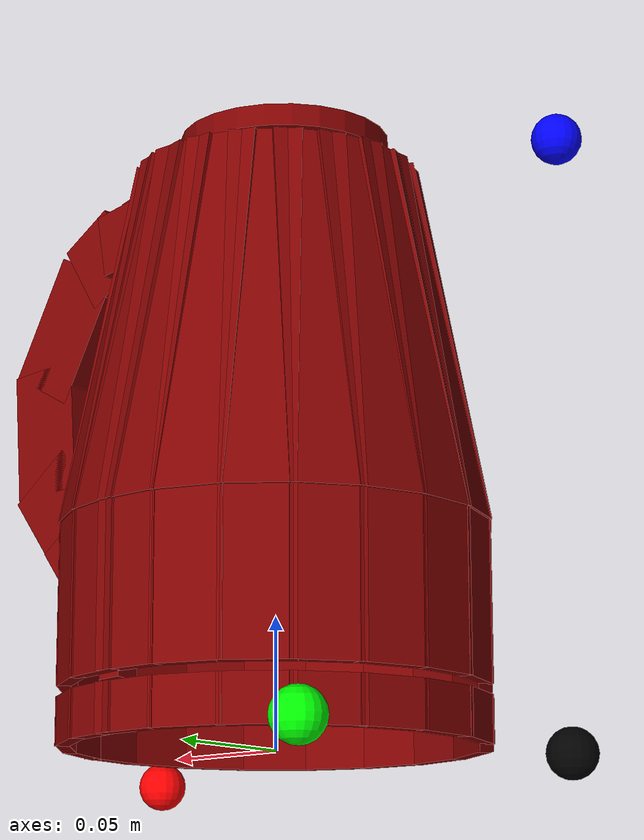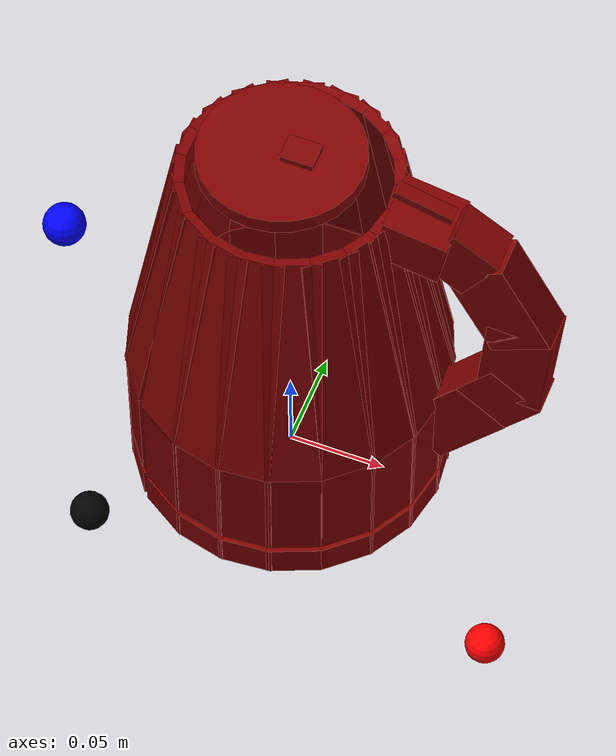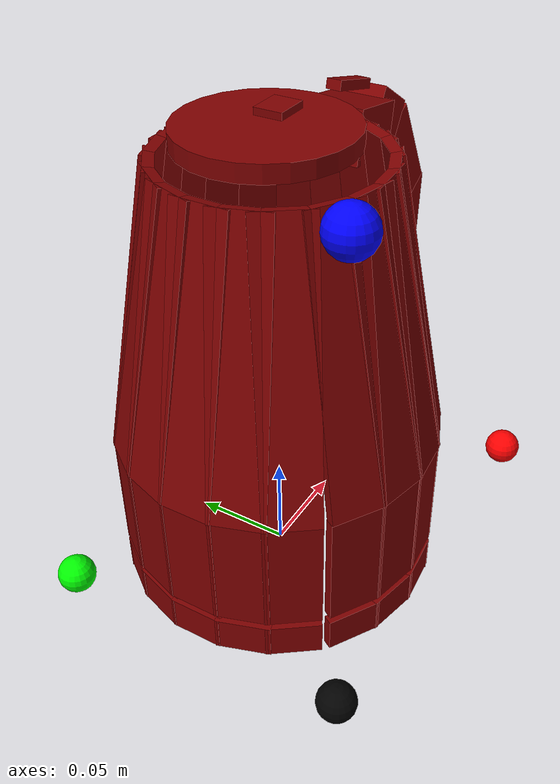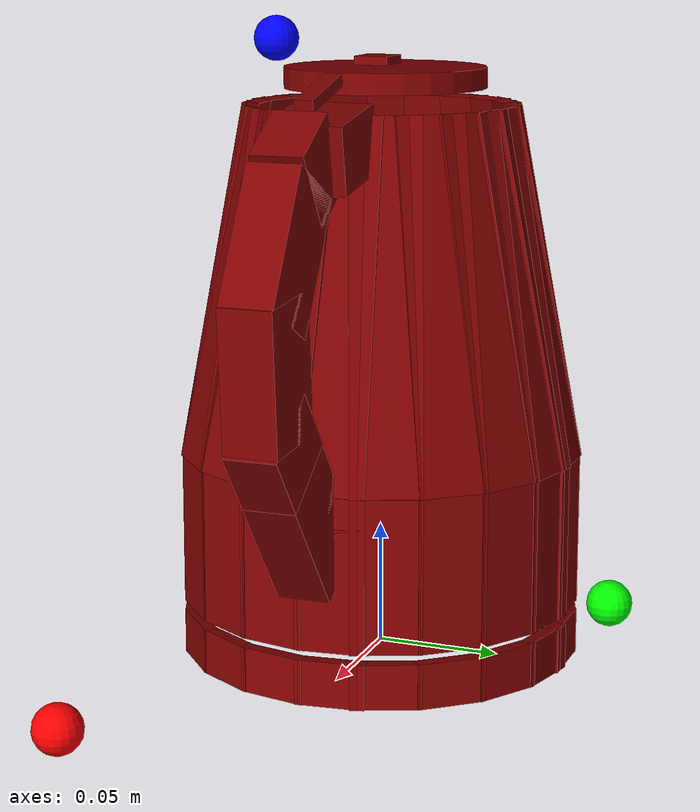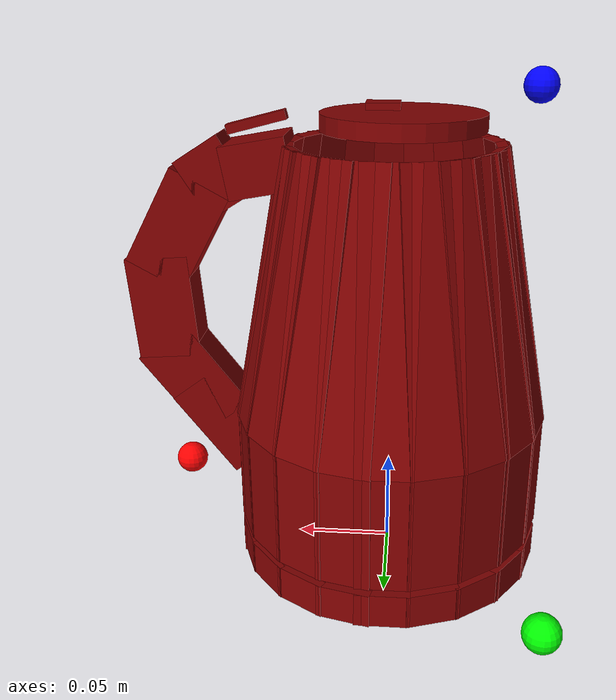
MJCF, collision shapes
<?xml version="1.0" ?>
<mujoco model="model">
    <compiler angle="radian"/>
    <asset>
        <mesh file="visuals/ElectricKettle001_Body001.obj" name="ElectricKettle001_Body001_vis"/>
        <mesh file="visuals/ElectricKettle001_Button002.obj" name="ElectricKettle001_Button002_vis"/>
        <mesh file="visuals/ElectricKettle001_Handle001.obj" name="ElectricKettle001_Handle001_vis"/>
        <mesh file="visuals/ElectricKettle001_Button001.obj" name="ElectricKettle001_Button001_vis"/>
        <mesh file="visuals/ElectricKettle001_Lid001.obj" name="ElectricKettle001_Lid001_vis"/>
        <mesh file="visuals/ElectricKettle001_Handle001_Clear.obj" name="ElectricKettle001_Handle001_Clear_vis"/>
        <texture file="visuals/T_ElectricKettle001_BC001.png" name="T_ElectricKettle001_BC001" type="2d"/>
        <material name="material" rgba="1 1 1 1" texture="T_ElectricKettle001_BC001"/>
        <material name="material_Clear" rgba="1 1 1 0.4" texture="T_ElectricKettle001_BC001"/>
    </asset>
    <default>
        <default class="visual">
            <geom conaffinity="0" contype="0" group="1" type="mesh"/>
        </default>
        <default class="collision">
            <geom group="0" rgba="0.5 0 0 0.5"/>
        </default>
    </default>
    <worldbody>
        <body>
            <site rgba="0 0 0 1" size="0.01" pos="-0.07801138237118721 -0.07804361544549465 0" name="ext_p0"/>
            <site rgba="1 0 0 1" size="0.01" pos="0.13312433287501335 -0.07804361544549465 0" name="ext_px"/>
            <site rgba="0 1 0 1" size="0.01" pos="-0.07801138237118721 0.07804333604872227 0" name="ext_py"/>
            <site rgba="0 0 1 1" size="0.01" pos="-0.07801138237118721 -0.07804361544549465 0.24174407124519348" name="ext_pz"/>
            <body name="object">
                <geom mesh="ElectricKettle001_Body001_vis" type="mesh" solimp="0.998 0.998 0.001" solref="0.001 1" density="100" friction="0.95 0.3 0.1" class="visual" material="material"/>
                <geom class="collision" type="box" pos="0.0 0.07726078480482101 0.009566003456711769" size="0.0025674684438854456 0.013775872066617012 0.008990506641566753" quat="0.7071067690849304 0.0 0.0 -0.7071067690849304"/>
                <geom class="collision" type="box" pos="-0.02437663823366165 0.07331445068120956 0.009566000662744045" size="0.002567468211054802 0.013775867410004139 0.008990505710244179" quat="0.8110213279724121 0.0 0.0 -0.5850166082382202"/>
                <geom class="collision" type="box" pos="-0.04602629691362381 0.062054891139268875 0.009566003456711769" size="0.002567468211054802 0.013775872066617012 0.008990506641566753" quat="0.8932319283485413 0.0 0.0 -0.449596107006073"/>
                <geom class="collision" type="box" pos="-0.06269532442092896 0.0451500341296196 0.009566003456711769" size="0.002567468211054802 0.013775872066617012 0.008990506641566753" quat="0.9517028331756592 0.0 0.0 -0.3070206344127655"/>
                <geom class="collision" type="box" pos="-0.0734357163310051 0.024008840322494507 0.009566003456711769" size="0.002567468211054802 0.013775870203971863 0.008990506641566753" quat="0.9875452518463135 0.0 0.0 -0.1573348045349121"/>
                <geom class="collision" type="box" pos="-0.07725980877876282 -0.00038727372884750366 0.009566000662744045" size="0.002567468211054802 0.013775870203971863 0.008990505710244179" quat="0.9999968409538269 0.0 0.0 0.0025063157081604004"/>
                <geom class="collision" type="box" pos="-0.07328534126281738 -0.02446400746703148 0.009566000662744045" size="0.002567468211054802 0.013775867410004139 0.008990505710244179" quat="0.9870524406433105 0.0 0.0 0.16039776802062988"/>
                <geom class="collision" type="box" pos="-0.06239733099937439 -0.045560967177152634 0.009566000662744045" size="0.002567468211054802 0.013775869272649288 0.008990505710244179" quat="0.9506890773773193 0.0 0.0 0.3101453483104706"/>
                <geom class="collision" type="box" pos="-0.04058349132537842 -0.06574350595474243 0.009566000662744045" size="0.002567468211054802 0.013775873929262161 0.008990505710244179" quat="0.8732923269271851 0.0 0.0 0.48719653487205505"/>
                <geom class="collision" type="box" pos="-0.01776774227619171 -0.0751899853348732 0.009566003456711769" size="0.0025674679782241583 0.013775872066617012 0.008990506641566753" quat="0.7842100858688354 0.0 0.0 0.6204953193664551"/>
                <geom class="collision" type="box" pos="0.006569035351276398 -0.07698100805282593 0.009566000662744045" size="0.0025674679782241583 0.013775871135294437 0.008990505710244179" quat="-0.6763784885406494 0.0 0.0 -0.7365542650222778"/>
                <geom class="collision" type="box" pos="0.029632963240146637 -0.07135205715894699 0.009566003456711769" size="0.002567468211054802 0.013775870203971863 0.008990506641566753" quat="-0.5551824569702148 0.0 0.0 -0.8317285776138306"/>
                <geom class="collision" type="box" pos="0.051555026322603226 -0.05754397064447403 0.009566003456711769" size="0.002567468909546733 0.013775873929262161 0.008990506641566753" quat="-0.40786898136138916 0.0 0.0 -0.9130403995513916"/>
                <geom class="collision" type="box" pos="0.06707746535539627 -0.03833853453397751 0.009566000662744045" size="0.0025674679782241583 0.013775869272649288 0.008990505710244179" quat="-0.2567143738269806 0.0 0.0 -0.9664872884750366"/>
                <geom class="collision" type="box" pos="0.07568882405757904 -0.015505857765674591 0.009566003456711769" size="0.002567468909546733 0.013775873929262161 0.008990506641566753" quat="-0.10086193680763245 0.0 0.0 -0.9949004650115967"/>
                <geom class="collision" type="box" pos="0.07682354748249054 0.008207902312278748 0.009566003456711769" size="0.0025674677453935146 0.013775868341326714 0.008990506641566753" quat="0.053193509578704834 0.0 0.0 -0.9985842108726501"/>
                <geom class="collision" type="box" pos="0.07181009650230408 0.02850506082177162 0.009566003456711769" size="0.002567468909546733 0.013775872997939587 0.008990506641566753" quat="0.18781530857086182 0.0 0.0 -0.9822043180465698"/>
                <geom class="collision" type="box" pos="0.05914850905537605 0.04970595985651016 0.009566003456711769" size="0.002567468909546733 0.013775874860584736 0.008990506641566753" quat="0.3423670530319214 0.0 0.0 -0.9395662546157837"/>
                <geom class="collision" type="box" pos="0.04069571942090988 0.06567410379648209 0.009566003456711769" size="0.0025674679782241583 0.013775869272649288 0.008990506641566753" quat="0.4864504635334015 0.0 0.0 -0.8737081289291382"/>
                <geom class="collision" type="box" pos="0.018833518028259277 0.07493015378713608 0.009566000662744045" size="0.002567468211054802 0.013775870203971863 0.008990505710244179" quat="0.6149123907089233 0.0 0.0 -0.78859543800354"/>
                <body name="ElectricKettle001_Handle001">
                    <joint axis="0 0 1" pos="0.0 0.0 0.019041121006011963" limited="true" name="ElectricKettle001_Handle001_joint" range="0.0 0.02" type="slide" damping="2" frictionloss="2" armature=".01"/>
                    <geom mesh="ElectricKettle001_Handle001_vis" type="mesh" solimp="0.998 0.998 0.001" solref="0.001 1" density="100" friction="0.95 0.3 0.1" class="visual" material="material"/>
                    <geom class="collision" type="box" pos="0.07114657759666443 0.014071319252252579 0.051101066172122955" size="0.0059483167715370655 0.020590348169207573 0.005948314908891916" quat="0.5410292744636536 0.5156148076057434 -0.43833237886428833 -0.49929279088974"/>
                    <geom class="collision" type="box" pos="0.08698375523090363 -7.450580596923828e-09 0.2055806666612625" size="0.010406920686364174 0.016176754608750343 0.012970302253961563" quat="0.6185635924339294 0.34260621666908264 -0.34260621666908264 -0.6185635924339294"/>
                    <geom class="collision" type="box" pos="0.10708519071340561 -7.450580596923828e-09 0.1791350394487381" size="0.010406920686364174 0.016176756471395493 0.02673378959298134" quat="0.6847237944602966 0.17650292813777924 -0.17650292813777924 -0.6847237944602966"/>
                    <geom class="collision" type="box" pos="0.11707442998886108 -7.450580596923828e-09 0.13792939484119415" size="0.010406920686364174 0.016176756471395493 0.02673378959298134" quat="0.7066470980644226 -0.025491775944828987 0.025491775944828987 -0.7066470980644226"/>
                    <geom class="collision" type="box" pos="0.10333921760320663 -7.450580596923828e-09 0.09774540364742279" size="0.010406920686364174 0.016176752746105194 0.02673378959298134" quat="0.6706768274307251 -0.22403696179389954 0.22403696179389954 -0.6706768274307251"/>
                    <geom class="collision" type="box" pos="0.0865391343832016 -7.450580596923828e-09 0.07492906600236893" size="0.010406920686364174 0.016176752746105194 0.02673378959298134" quat="0.6706768274307251 -0.22403696179389954 0.22403696179389954 -0.6706768274307251"/>
                    <geom class="collision" type="box" pos="0.0 0.07726078480482101 0.052683018147945404" size="0.0025674684438854456 0.013775872066617012 0.030322927981615067" quat="0.7071067690849304 0.0 0.0 -0.7071067690849304"/>
                    <geom class="collision" type="box" pos="0.0 0.06438226997852325 0.15227310359477997" size="0.002567468211054802 0.013775872066617012 0.07080358266830444" quat="0.7038407325744629 0.06788363307714462 0.06788363307714462 -0.7038407325744629"/>
                    <geom class="collision" type="box" pos="-0.02437663823366165 0.07331445068120956 0.052683018147945404" size="0.002567468211054802 0.013775870203971863 0.030322927981615067" quat="0.8110213279724121 0.0 0.0 -0.5850166082382202"/>
                    <geom class="collision" type="box" pos="-0.0203133225440979 0.06109374389052391 0.15227310359477997" size="0.0025674684438854456 0.013775872066617012 0.07080358266830444" quat="0.8072752952575684 0.05616272613406181 0.07785961776971817 -0.5823144912719727"/>
                    <geom class="collision" type="box" pos="-0.04602629318833351 0.06205488741397858 0.052683018147945404" size="0.0025674679782241583 0.013775869272649288 0.030322927981615067" quat="0.8932319283485413 0.0 0.0 -0.449596107006073"/>
                    <geom class="collision" type="box" pos="-0.03835422545671463 0.05171102657914162 0.15227310359477997" size="0.0025674679782241583 0.013775870203971863 0.07080358266830444" quat="0.8891061544418335 0.04316210374236107 0.08575201034545898 -0.4475195109844208"/>
                    <geom class="collision" type="box" pos="-0.06269532442092896 0.0451500341296196 0.052683018147945404" size="0.002567468211054802 0.013775870203971863 0.030322927981615067" quat="0.9517028331756592 0.0 0.0 -0.3070206344127655"/>
                    <geom class="collision" type="box" pos="-0.05224471539258957 0.037624016404151917 0.15227310359477997" size="0.0025674679782241583 0.013775869272649288 0.07080358266830444" quat="0.9473071098327637 0.029474565759301186 0.09136534482240677 -0.30560243129730225"/>
                    <geom class="collision" type="box" pos="-0.0734357163310051 0.024008840322494507 0.052683018147945404" size="0.002567468211054802 0.013775870203971863 0.030322927981615067" quat="0.9875452518463135 0.0 0.0 -0.1573348045349121"/>
                    <geom class="collision" type="box" pos="-0.06119479984045029 0.020006828010082245 0.15227310359477997" size="0.0025674679782241583 0.013775870203971863 0.07080358266830444" quat="0.9829839468002319 0.015104446560144424 0.09480626881122589 -0.15660810470581055"/>
                    <geom class="collision" type="box" pos="-0.07725980877876282 -0.00038727372884750366 0.052683018147945404" size="0.002567468211054802 0.013775870203971863 0.030322927981615067" quat="0.9999968409538269 0.0 0.0 0.0025063157081604004"/>
                    <geom class="collision" type="box" pos="-0.06438146531581879 -0.0003227218985557556 0.15227310359477997" size="0.002567468211054802 0.013775870203971863 0.07080358266830444" quat="0.9953780174255371 -0.0002406090497970581 0.09600163251161575 0.0024946928024291992"/>
                    <geom class="collision" type="box" pos="-0.07328534126281738 -0.02446400746703148 0.052683018147945404" size="0.002567468211054802 0.013775870203971863 0.030322927981615067" quat="0.9870524406433105 0.0 0.0 0.16039776802062988"/>
                    <geom class="collision" type="box" pos="-0.06106949970126152 -0.02038612961769104 0.15227310359477997" size="0.002567468211054802 0.013775870203971863 0.07080358266830444" quat="0.9824934005737305 -0.015398498624563217 0.09475894272327423 0.15965688228607178"/>
                    <geom class="collision" type="box" pos="-0.06239732727408409 -0.04556097090244293 0.052683018147945404" size="0.002567468211054802 0.013775870203971863 0.030322927981615067" quat="0.9506890773773193 0.0 0.0 0.3101453483104706"/>
                    <geom class="collision" type="box" pos="-0.0519963875412941 -0.03796646371483803 0.15227310359477997" size="0.0025674679782241583 0.013775870203971863 0.07080358266830444" quat="0.9462980031967163 -0.029774559661746025 0.09126799553632736 0.30871284008026123"/>
                    <geom class="collision" type="box" pos="-0.040583498775959015 -0.06574351340532303 0.052683018147945404" size="0.0025674686767160892 0.013775872066617012 0.030322927981615067" quat="0.8732923269271851 0.0 0.0 0.48719653487205505"/>
                    <geom class="collision" type="box" pos="-0.03381865471601486 -0.05478479713201523 0.15227310359477997" size="0.002567468211054802 0.013775871135294437 0.07080358266830444" quat="0.8692587018013 -0.0467718169093132 0.08383776992559433 0.48494619131088257"/>
                    <geom class="collision" type="box" pos="-0.01776774972677231 -0.0751900002360344 0.052683018147945404" size="0.0025674684438854456 0.013775872066617012 0.030322927981615067" quat="0.7842100858688354 0.0 0.0 0.6204953193664551"/>
                    <geom class="collision" type="box" pos="-0.014806054532527924 -0.06265666335821152 0.15227310359477997" size="0.0025674677453935146 0.013775870203971863 0.07080358266830444" quat="0.7805879712104797 -0.05956875905394554 0.07528569549322128 0.61762934923172"/>
                    <geom class="collision" type="box" pos="0.006569035351276398 -0.07698101550340652 0.052683018147945404" size="0.002567468211054802 0.013775871135294437 0.030322927981615067" quat="-0.6763784885406494 0.0 0.0 -0.7365542650222778"/>
                    <geom class="collision" type="box" pos="0.00547405332326889 -0.06414914131164551 0.15227310359477997" size="0.002567468211054802 0.013775872066617012 0.07080358266830444" quat="-0.6732544302940369 0.07071062922477722 -0.064933642745018 -0.7331522107124329"/>
                    <geom class="collision" type="box" pos="0.029632963240146637 -0.07135205715894699 0.052683018147945404" size="0.002567468211054802 0.013775870203971863 0.030322927981615067" quat="-0.5551824569702148 0.0 0.0 -0.8317285776138306"/>
                    <geom class="collision" type="box" pos="0.024693485349416733 -0.05945846810936928 0.15227310359477997" size="0.0025674677453935146 0.013775870203971863 0.07080358266830444" quat="-0.552618145942688 0.07984756678342819 -0.053298600018024445 -0.8278869390487671"/>
                    <geom class="collision" type="box" pos="0.051555026322603226 -0.05754397064447403 0.052683018147945404" size="0.002567468909546733 0.013775873929262161 0.030322927981615067" quat="-0.40786898136138916 0.0 0.0 -0.9130403995513916"/>
                    <geom class="collision" type="box" pos="0.04296139255166054 -0.04795200377702713 0.15227310359477997" size="0.002567468211054802 0.013775871135294437 0.07080358266830444" quat="-0.40598490834236145 0.08765365928411484 -0.03915619105100632 -0.9088233709335327"/>
                    <geom class="collision" type="box" pos="0.06707746535539627 -0.03833853453397751 0.052683018147945404" size="0.0025674679782241583 0.013775869272649288 0.030322927981615067" quat="-0.2567143738269806 0.0 0.0 -0.9664872884750366"/>
                    <geom class="collision" type="box" pos="0.05589638650417328 -0.03194792568683624 0.15227310359477997" size="0.0025674686767160892 0.013775873929262161 0.07080358266830444" quat="-0.25552862882614136 0.09278465807437897 -0.02464507520198822 -0.9620231986045837"/>
                    <geom class="collision" type="box" pos="0.07568881660699844 -0.015505857765674591 0.052683018147945404" size="0.0025674686767160892 0.013775872066617012 0.030322927981615067" quat="-0.10086193680763245 0.0 0.0 -0.9949004650115967"/>
                    <geom class="collision" type="box" pos="0.0630723387002945 -0.012921199202537537 0.15227310359477997" size="0.0025674686767160892 0.013775872997939587 0.07080358266830444" quat="-0.10039600729942322 0.09551237523555756 -0.009682934731245041 -0.9903050661087036"/>
                    <geom class="collision" type="box" pos="0.07682356238365173 0.008207902312278748 0.052683018147945404" size="0.0025674679782241583 0.013775869272649288 0.030322927981615067" quat="0.053193509578704834 0.0 0.0 -0.9985842108726501"/>
                    <geom class="collision" type="box" pos="0.06401792913675308 0.00683974102139473 0.15227310359477997" size="0.002567468211054802 0.013775872066617012 0.07080358266830444" quat="0.052947789430618286 0.09586603194475174 0.00510668009519577 -0.9939719438552856"/>
                    <geom class="collision" type="box" pos="0.07181010395288467 0.02850506454706192 0.052683018147945404" size="0.002567468909546733 0.013775873929262161 0.030322927981615067" quat="0.18781530857086182 0.0 0.0 -0.9822043180465698"/>
                    <geom class="collision" type="box" pos="0.05984015017747879 0.023753587156534195 0.15227310359477997" size="0.002567468909546733 0.013775874860584736 0.07080358266830444" quat="0.18694770336151123 0.09429353475570679 0.018030624836683273 -0.9776676893234253"/>
                    <geom class="collision" type="box" pos="0.05914851650595665 0.04970596730709076 0.052683018147945404" size="0.0025674691423773766 0.013775874860584736 0.030322927981615067" quat="0.3423670530319214 0.0 0.0 -0.9395662546157837"/>
                    <geom class="collision" type="box" pos="0.04928910732269287 0.04142053797841072 0.15227310359477997" size="0.002567468211054802 0.013775872066617012 0.07080358266830444" quat="0.3407856822013855 0.09020020067691803 0.032867904752492905 -0.9352266192436218"/>
                    <geom class="collision" type="box" pos="0.04069571942090988 0.06567410379648209 0.052683018147945404" size="0.0025674679782241583 0.013775869272649288 0.030322927981615067" quat="0.4864504635334015 0.0 0.0 -0.8737081289291382"/>
                    <geom class="collision" type="box" pos="0.03391219675540924 0.05472695827484131 0.15227310359477997" size="0.0025674679782241583 0.013775870203971863 0.07080358266830444" quat="0.484203577041626 0.08387769758701324 0.04670019447803497 -0.8696726560592651"/>
                    <geom class="collision" type="box" pos="0.018833518028259277 0.07493015378713608 0.052683018147945404" size="0.002567468211054802 0.013775870203971863 0.030322927981615067" quat="0.6149123907089233 0.0 0.0 -0.78859543800354"/>
                    <geom class="collision" type="box" pos="0.015694178640842438 0.06244012713432312 0.15227310359477997" size="0.0025674679782241583 0.013775871135294437 0.07080358266830444" quat="0.6120721697807312 0.07570669054985046 0.059032782912254333 -0.7849530577659607"/>
                    <geom class="collision" type="box" pos="0.06511648744344711 0.0 0.21094107627868652" size="0.015497389249503613 0.016176752746105194 0.012970301322638988" quat="0.7044461369514465 -0.06128261610865593 0.06128261610865593 -0.7044461369514465"/>
                    <body name="ElectricKettle001_Button002">
                        <joint axis="0 1 0" pos="0.06595715880393982 -0.00025021814508363605 0.23366549611091614" limited="true" name="ElectricKettle001_Button002_joint" range="0.0 0.2617993877991494" type="hinge" damping="2" frictionloss="2" armature=".01"/>
                        <geom mesh="ElectricKettle001_Button002_vis" type="mesh" solimp="0.998 0.998 0.001" solref="0.001 1" density="100" friction="0.95 0.3 0.1" class="visual" material="material"/>
                        <geom class="collision" type="box" pos="0.06635893136262894 0.0 0.2311476618051529" size="0.0036123027093708515 0.014906937256455421 0.0023257581051439047" quat="0.08908417075872421 0.7014727592468262 -0.7014727592468262 -0.08908417075872421"/>
                    </body>
                    <body name="ElectricKettle001_Handle001_Clear">
                        <geom mesh="ElectricKettle001_Handle001_Clear_vis" type="mesh" solimp="0.998 0.998 0.001" solref="0.001 1" density="100" friction="0.95 0.3 0.1" class="visual" material="material_Clear"/>
                        <geom class="collision" type="box" pos="0.07114657759666443 0.014071319252252579 0.051101066172122955" size="0.0059483167715370655 0.020590348169207573 0.005948314908891916" quat="0.5410292744636536 0.5156148076057434 -0.43833237886428833 -0.49929279088974"/>
                        <geom class="collision" type="box" pos="0.08698375523090363 -7.450580596923828e-09 0.2055806666612625" size="0.010406920686364174 0.016176754608750343 0.012970302253961563" quat="0.6185635924339294 0.34260621666908264 -0.34260621666908264 -0.6185635924339294"/>
                        <geom class="collision" type="box" pos="0.10708519071340561 -7.450580596923828e-09 0.1791350394487381" size="0.010406920686364174 0.016176756471395493 0.02673378959298134" quat="0.6847237944602966 0.17650292813777924 -0.17650292813777924 -0.6847237944602966"/>
                        <geom class="collision" type="box" pos="0.11707442998886108 -7.450580596923828e-09 0.13792939484119415" size="0.010406920686364174 0.016176756471395493 0.02673378959298134" quat="0.7066470980644226 -0.025491775944828987 0.025491775944828987 -0.7066470980644226"/>
                        <geom class="collision" type="box" pos="0.10333921760320663 -7.450580596923828e-09 0.09774540364742279" size="0.010406920686364174 0.016176752746105194 0.02673378959298134" quat="0.6706768274307251 -0.22403696179389954 0.22403696179389954 -0.6706768274307251"/>
                        <geom class="collision" type="box" pos="0.0865391343832016 -7.450580596923828e-09 0.07492906600236893" size="0.010406920686364174 0.016176752746105194 0.02673378959298134" quat="0.6706768274307251 -0.22403696179389954 0.22403696179389954 -0.6706768274307251"/>
                        <geom class="collision" type="box" pos="0.0 0.07726078480482101 0.052683018147945404" size="0.0025674684438854456 0.013775872066617012 0.030322927981615067" quat="0.7071067690849304 0.0 0.0 -0.7071067690849304"/>
                        <geom class="collision" type="box" pos="0.0 0.06438226997852325 0.15227310359477997" size="0.002567468211054802 0.013775872066617012 0.07080358266830444" quat="0.7038407325744629 0.06788363307714462 0.06788363307714462 -0.7038407325744629"/>
                        <geom class="collision" type="box" pos="-0.02437663823366165 0.07331445068120956 0.052683018147945404" size="0.002567468211054802 0.013775870203971863 0.030322927981615067" quat="0.8110213279724121 0.0 0.0 -0.5850166082382202"/>
                        <geom class="collision" type="box" pos="-0.0203133225440979 0.06109374389052391 0.15227310359477997" size="0.0025674684438854456 0.013775872066617012 0.07080358266830444" quat="0.8072752952575684 0.05616272613406181 0.07785961776971817 -0.5823144912719727"/>
                        <geom class="collision" type="box" pos="-0.04602629318833351 0.06205488741397858 0.052683018147945404" size="0.0025674679782241583 0.013775869272649288 0.030322927981615067" quat="0.8932319283485413 0.0 0.0 -0.449596107006073"/>
                        <geom class="collision" type="box" pos="-0.03835422545671463 0.05171102657914162 0.15227310359477997" size="0.0025674679782241583 0.013775870203971863 0.07080358266830444" quat="0.8891061544418335 0.04316210374236107 0.08575201034545898 -0.4475195109844208"/>
                        <geom class="collision" type="box" pos="-0.06269532442092896 0.0451500341296196 0.052683018147945404" size="0.002567468211054802 0.013775870203971863 0.030322927981615067" quat="0.9517028331756592 0.0 0.0 -0.3070206344127655"/>
                        <geom class="collision" type="box" pos="-0.05224471539258957 0.037624016404151917 0.15227310359477997" size="0.0025674679782241583 0.013775869272649288 0.07080358266830444" quat="0.9473071098327637 0.029474565759301186 0.09136534482240677 -0.30560243129730225"/>
                        <geom class="collision" type="box" pos="-0.0734357163310051 0.024008840322494507 0.052683018147945404" size="0.002567468211054802 0.013775870203971863 0.030322927981615067" quat="0.9875452518463135 0.0 0.0 -0.1573348045349121"/>
                        <geom class="collision" type="box" pos="-0.06119479984045029 0.020006828010082245 0.15227310359477997" size="0.0025674679782241583 0.013775870203971863 0.07080358266830444" quat="0.9829839468002319 0.015104446560144424 0.09480626881122589 -0.15660810470581055"/>
                        <geom class="collision" type="box" pos="-0.07725980877876282 -0.00038727372884750366 0.052683018147945404" size="0.002567468211054802 0.013775870203971863 0.030322927981615067" quat="0.9999968409538269 0.0 0.0 0.0025063157081604004"/>
                        <geom class="collision" type="box" pos="-0.06438146531581879 -0.0003227218985557556 0.15227310359477997" size="0.002567468211054802 0.013775870203971863 0.07080358266830444" quat="0.9953780174255371 -0.0002406090497970581 0.09600163251161575 0.0024946928024291992"/>
                        <geom class="collision" type="box" pos="-0.07328534126281738 -0.02446400746703148 0.052683018147945404" size="0.002567468211054802 0.013775870203971863 0.030322927981615067" quat="0.9870524406433105 0.0 0.0 0.16039776802062988"/>
                        <geom class="collision" type="box" pos="-0.06106949970126152 -0.02038612961769104 0.15227310359477997" size="0.002567468211054802 0.013775870203971863 0.07080358266830444" quat="0.9824934005737305 -0.015398498624563217 0.09475894272327423 0.15965688228607178"/>
                        <geom class="collision" type="box" pos="-0.06239732727408409 -0.04556097090244293 0.052683018147945404" size="0.002567468211054802 0.013775870203971863 0.030322927981615067" quat="0.9506890773773193 0.0 0.0 0.3101453483104706"/>
                        <geom class="collision" type="box" pos="-0.0519963875412941 -0.03796646371483803 0.15227310359477997" size="0.0025674679782241583 0.013775870203971863 0.07080358266830444" quat="0.9462980031967163 -0.029774559661746025 0.09126799553632736 0.30871284008026123"/>
                        <geom class="collision" type="box" pos="-0.040583498775959015 -0.06574351340532303 0.052683018147945404" size="0.0025674686767160892 0.013775872066617012 0.030322927981615067" quat="0.8732923269271851 0.0 0.0 0.48719653487205505"/>
                        <geom class="collision" type="box" pos="-0.03381865471601486 -0.05478479713201523 0.15227310359477997" size="0.002567468211054802 0.013775871135294437 0.07080358266830444" quat="0.8692587018013 -0.0467718169093132 0.08383776992559433 0.48494619131088257"/>
                        <geom class="collision" type="box" pos="-0.01776774972677231 -0.0751900002360344 0.052683018147945404" size="0.0025674684438854456 0.013775872066617012 0.030322927981615067" quat="0.7842100858688354 0.0 0.0 0.6204953193664551"/>
                        <geom class="collision" type="box" pos="-0.014806054532527924 -0.06265666335821152 0.15227310359477997" size="0.0025674677453935146 0.013775870203971863 0.07080358266830444" quat="0.7805879712104797 -0.05956875905394554 0.07528569549322128 0.61762934923172"/>
                        <geom class="collision" type="box" pos="0.006569035351276398 -0.07698101550340652 0.052683018147945404" size="0.002567468211054802 0.013775871135294437 0.030322927981615067" quat="-0.6763784885406494 0.0 0.0 -0.7365542650222778"/>
                        <geom class="collision" type="box" pos="0.00547405332326889 -0.06414914131164551 0.15227310359477997" size="0.002567468211054802 0.013775872066617012 0.07080358266830444" quat="-0.6732544302940369 0.07071062922477722 -0.064933642745018 -0.7331522107124329"/>
                        <geom class="collision" type="box" pos="0.029632963240146637 -0.07135205715894699 0.052683018147945404" size="0.002567468211054802 0.013775870203971863 0.030322927981615067" quat="-0.5551824569702148 0.0 0.0 -0.8317285776138306"/>
                        <geom class="collision" type="box" pos="0.024693485349416733 -0.05945846810936928 0.15227310359477997" size="0.0025674677453935146 0.013775870203971863 0.07080358266830444" quat="-0.552618145942688 0.07984756678342819 -0.053298600018024445 -0.8278869390487671"/>
                        <geom class="collision" type="box" pos="0.051555026322603226 -0.05754397064447403 0.052683018147945404" size="0.002567468909546733 0.013775873929262161 0.030322927981615067" quat="-0.40786898136138916 0.0 0.0 -0.9130403995513916"/>
                        <geom class="collision" type="box" pos="0.04296139255166054 -0.04795200377702713 0.15227310359477997" size="0.002567468211054802 0.013775871135294437 0.07080358266830444" quat="-0.40598490834236145 0.08765365928411484 -0.03915619105100632 -0.9088233709335327"/>
                        <geom class="collision" type="box" pos="0.06707746535539627 -0.03833853453397751 0.052683018147945404" size="0.0025674679782241583 0.013775869272649288 0.030322927981615067" quat="-0.2567143738269806 0.0 0.0 -0.9664872884750366"/>
                        <geom class="collision" type="box" pos="0.05589638650417328 -0.03194792568683624 0.15227310359477997" size="0.0025674686767160892 0.013775873929262161 0.07080358266830444" quat="-0.25552862882614136 0.09278465807437897 -0.02464507520198822 -0.9620231986045837"/>
                        <geom class="collision" type="box" pos="0.07568881660699844 -0.015505857765674591 0.052683018147945404" size="0.0025674686767160892 0.013775872066617012 0.030322927981615067" quat="-0.10086193680763245 0.0 0.0 -0.9949004650115967"/>
                        <geom class="collision" type="box" pos="0.0630723387002945 -0.012921199202537537 0.15227310359477997" size="0.0025674686767160892 0.013775872997939587 0.07080358266830444" quat="-0.10039600729942322 0.09551237523555756 -0.009682934731245041 -0.9903050661087036"/>
                        <geom class="collision" type="box" pos="0.07682356238365173 0.008207902312278748 0.052683018147945404" size="0.0025674679782241583 0.013775869272649288 0.030322927981615067" quat="0.053193509578704834 0.0 0.0 -0.9985842108726501"/>
                        <geom class="collision" type="box" pos="0.06401792913675308 0.00683974102139473 0.15227310359477997" size="0.002567468211054802 0.013775872066617012 0.07080358266830444" quat="0.052947789430618286 0.09586603194475174 0.00510668009519577 -0.9939719438552856"/>
                        <geom class="collision" type="box" pos="0.07181010395288467 0.02850506454706192 0.052683018147945404" size="0.002567468909546733 0.013775873929262161 0.030322927981615067" quat="0.18781530857086182 0.0 0.0 -0.9822043180465698"/>
                        <geom class="collision" type="box" pos="0.05984015017747879 0.023753587156534195 0.15227310359477997" size="0.002567468909546733 0.013775874860584736 0.07080358266830444" quat="0.18694770336151123 0.09429353475570679 0.018030624836683273 -0.9776676893234253"/>
                        <geom class="collision" type="box" pos="0.05914851650595665 0.04970596730709076 0.052683018147945404" size="0.0025674691423773766 0.013775874860584736 0.030322927981615067" quat="0.3423670530319214 0.0 0.0 -0.9395662546157837"/>
                        <geom class="collision" type="box" pos="0.04928910732269287 0.04142053797841072 0.15227310359477997" size="0.002567468211054802 0.013775872066617012 0.07080358266830444" quat="0.3407856822013855 0.09020020067691803 0.032867904752492905 -0.9352266192436218"/>
                        <geom class="collision" type="box" pos="0.04069571942090988 0.06567410379648209 0.052683018147945404" size="0.0025674679782241583 0.013775869272649288 0.030322927981615067" quat="0.4864504635334015 0.0 0.0 -0.8737081289291382"/>
                        <geom class="collision" type="box" pos="0.03391219675540924 0.05472695827484131 0.15227310359477997" size="0.0025674679782241583 0.013775870203971863 0.07080358266830444" quat="0.484203577041626 0.08387769758701324 0.04670019447803497 -0.8696726560592651"/>
                        <geom class="collision" type="box" pos="0.018833518028259277 0.07493015378713608 0.052683018147945404" size="0.002567468211054802 0.013775870203971863 0.030322927981615067" quat="0.6149123907089233 0.0 0.0 -0.78859543800354"/>
                        <geom class="collision" type="box" pos="0.015694178640842438 0.06244012713432312 0.15227310359477997" size="0.0025674679782241583 0.013775871135294437 0.07080358266830444" quat="0.6120721697807312 0.07570669054985046 0.059032782912254333 -0.7849530577659607"/>
                        <geom class="collision" type="box" pos="0.06511648744344711 0.0 0.21094107627868652" size="0.015497389249503613 0.016176752746105194 0.012970301322638988" quat="0.7044461369514465 -0.06128261610865593 0.06128261610865593 -0.7044461369514465"/>
                    </body>
                    <body name="ElectricKettle001_Lid001">
                        <joint axis="0 1 0" pos="0.0442967489361763 -2.2959327907301486e-05 0.2309522032737732" limited="true" name="ElectricKettle001_Lid001_joint" range="0.0 1.5707963267948966" type="hinge" damping="2" frictionloss="2" armature=".01"/>
                        <geom mesh="ElectricKettle001_Lid001_vis" type="mesh" solimp="0.998 0.998 0.001" solref="0.001 1" density="100" friction="0.95 0.3 0.1" class="visual" material="material"/>
                        <geom class="collision" type="cylinder" pos="-0.00397300161421299 0.0 0.23204299807548523" size="0.040286511182785034 0.004160699434578419" quat="0.7071067690849304 0.0 0.0 -0.7071067690849304"/>
                        <body name="ElectricKettle001_Button001">
                            <joint axis="-1 0 0" pos="0.004197737202048302 -9.533429874863941e-06 0.24028132855892181" limited="true" name="ElectricKettle001_Button001_joint" range="0.0 0.015" type="slide" damping="2" frictionloss="2" armature=".01"/>
                            <geom mesh="ElectricKettle001_Button001_vis" type="mesh" solimp="0.998 0.998 0.001" solref="0.001 1" density="100" friction="0.95 0.3 0.1" class="visual" material="material"/>
                            <geom class="collision" type="box" pos="0.005577339790761471 0.0002364879474043846 0.23937781155109406" size="0.006799906957894564 0.008221696130931377 0.0016638693632557988" quat="0.7071067690849304 0.0 0.0 -0.7071067690849304"/>
                        </body>
                    </body>
                </body>
            </body>
        </body>
    </worldbody>
    <actuator>
        <motor name="ElectricKettle001_Handle001_joint_actuator" joint="ElectricKettle001_Handle001_joint" gear="10"/>
        <motor name="ElectricKettle001_Button002_joint_actuator" joint="ElectricKettle001_Button002_joint" gear="10"/>
        <motor name="ElectricKettle001_Lid001_joint_actuator" joint="ElectricKettle001_Lid001_joint" gear="10"/>
        <motor name="ElectricKettle001_Button001_joint_actuator" joint="ElectricKettle001_Button001_joint" gear="10"/>
    </actuator>
</mujoco>
